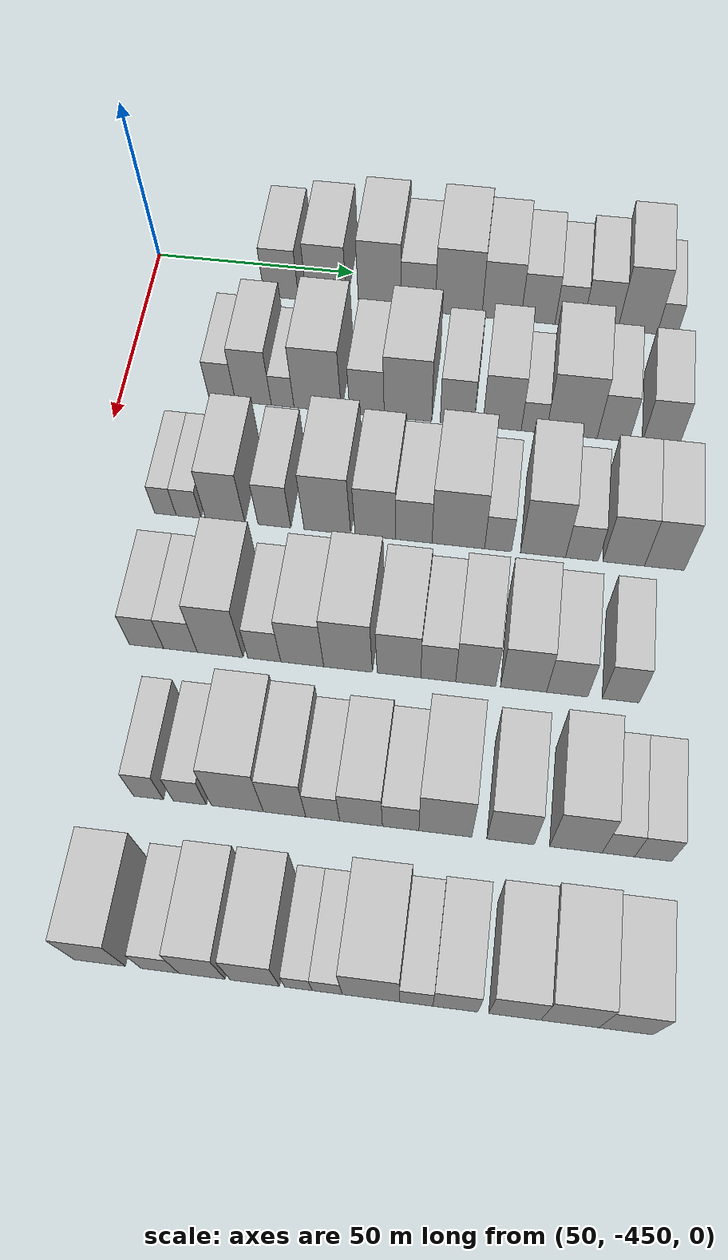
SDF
<sdf version="1.6">
 <world name="default">
  <model name="building_11">
   <static>1</static>
   <pose>50.0000 -416.7494 0 0.000000 0.000000 0.000000</pose>
   <link name="link">
    <pose>0 0 9.00 0 0 0</pose>
    <collision name="collision"><geometry><box><size>20.0000 8.7095 18.0000</size></box></geometry></collision>
    <visual name="visual">
     <cast_shadows>0</cast_shadows>
     <geometry><box><size>20.0000 8.7095 18.0000</size></box></geometry>
     <material>
      <script>
       <uri>model://HANNAS_wall/materials/scripts</uri>
       <uri>model://HANNAS_wall/materials/textures</uri>
       <name>vrc/HANNAS_wall</name>
      </script>
     </material>
    </visual>
   </link>
  </model>
  <model name="building_12">
   <static>1</static>
   <pose>50.0000 -405.3439 0 0.000000 0.000000 0.000000</pose>
   <link name="link">
    <pose>0 0 10.50 0 0 0</pose>
    <collision name="collision"><geometry><box><size>20.0000 10.1016 21.0000</size></box></geometry></collision>
    <visual name="visual">
     <cast_shadows>0</cast_shadows>
     <geometry><box><size>20.0000 10.1016 21.0000</size></box></geometry>
     <material>
      <script>
       <uri>model://HANNAS_wall/materials/scripts</uri>
       <uri>model://HANNAS_wall/materials/textures</uri>
       <name>vrc/HANNAS_wall</name>
      </script>
     </material>
    </visual>
   </link>
  </model>
  <model name="building_13">
   <static>1</static>
   <pose>50.0000 -391.9490 0 0.000000 0.000000 0.000000</pose>
   <link name="link">
    <pose>0 0 12.00 0 0 0</pose>
    <collision name="collision"><geometry><box><size>20.0000 10.6881 24.0000</size></box></geometry></collision>
    <visual name="visual">
     <cast_shadows>0</cast_shadows>
     <geometry><box><size>20.0000 10.6881 24.0000</size></box></geometry>
     <material>
      <script>
       <uri>model://HANNAS_wall/materials/scripts</uri>
       <uri>model://HANNAS_wall/materials/textures</uri>
       <name>vrc/HANNAS_wall</name>
      </script>
     </material>
    </visual>
   </link>
  </model>
  <model name="building_14">
   <static>1</static>
   <pose>50.0000 -382.3258 0 0.000000 0.000000 0.000000</pose>
   <link name="link">
    <pose>0 0 9.00 0 0 0</pose>
    <collision name="collision"><geometry><box><size>20.0000 8.5583 18.0000</size></box></geometry></collision>
    <visual name="visual">
     <cast_shadows>0</cast_shadows>
     <geometry><box><size>20.0000 8.5583 18.0000</size></box></geometry>
     <material>
      <script>
       <uri>model://HANNAS_wall/materials/scripts</uri>
       <uri>model://HANNAS_wall/materials/textures</uri>
       <name>vrc/HANNAS_wall</name>
      </script>
     </material>
    </visual>
   </link>
  </model>
  <model name="building_15">
   <static>1</static>
   <pose>50.0000 -372.2604 0 0.000000 0.000000 0.000000</pose>
   <link name="link">
    <pose>0 0 12.00 0 0 0</pose>
    <collision name="collision"><geometry><box><size>20.0000 11.5725 24.0000</size></box></geometry></collision>
    <visual name="visual">
     <cast_shadows>0</cast_shadows>
     <geometry><box><size>20.0000 11.5725 24.0000</size></box></geometry>
     <material>
      <script>
       <uri>model://HANNAS_wall/materials/scripts</uri>
       <uri>model://HANNAS_wall/materials/textures</uri>
       <name>vrc/HANNAS_wall</name>
      </script>
     </material>
    </visual>
   </link>
  </model>
  <model name="building_16">
   <static>1</static>
   <pose>50.0000 -361.6532 0 0.000000 0.000000 0.000000</pose>
   <link name="link">
    <pose>0 0 10.50 0 0 0</pose>
    <collision name="collision"><geometry><box><size>20.0000 9.6419 21.0000</size></box></geometry></collision>
    <visual name="visual">
     <cast_shadows>0</cast_shadows>
     <geometry><box><size>20.0000 9.6419 21.0000</size></box></geometry>
     <material>
      <script>
       <uri>model://HANNAS_wall/materials/scripts</uri>
       <uri>model://HANNAS_wall/materials/textures</uri>
       <name>vrc/HANNAS_wall</name>
      </script>
     </material>
    </visual>
   </link>
  </model>
  <model name="building_17">
   <static>1</static>
   <pose>50.0000 -352.5997 0 0.000000 0.000000 0.000000</pose>
   <link name="link">
    <pose>0 0 9.00 0 0 0</pose>
    <collision name="collision"><geometry><box><size>20.0000 8.4653 18.0000</size></box></geometry></collision>
    <visual name="visual">
     <cast_shadows>0</cast_shadows>
     <geometry><box><size>20.0000 8.4653 18.0000</size></box></geometry>
     <material>
      <script>
       <uri>model://HANNAS_wall/materials/scripts</uri>
       <uri>model://HANNAS_wall/materials/textures</uri>
       <name>vrc/HANNAS_wall</name>
      </script>
     </material>
    </visual>
   </link>
  </model>
  <model name="building_18">
   <static>1</static>
   <pose>50.0000 -344.9097 0 0.000000 0.000000 0.000000</pose>
   <link name="link">
    <pose>0 0 7.50 0 0 0</pose>
    <collision name="collision"><geometry><box><size>20.0000 6.9146 15.0000</size></box></geometry></collision>
    <visual name="visual">
     <cast_shadows>0</cast_shadows>
     <geometry><box><size>20.0000 6.9146 15.0000</size></box></geometry>
     <material>
      <script>
       <uri>model://HANNAS_wall/materials/scripts</uri>
       <uri>model://HANNAS_wall/materials/textures</uri>
       <name>vrc/HANNAS_wall</name>
      </script>
     </material>
    </visual>
   </link>
  </model>
  <model name="building_19">
   <static>1</static>
   <pose>50.0000 -337.1906 0 0.000000 0.000000 0.000000</pose>
   <link name="link">
    <pose>0 0 9.00 0 0 0</pose>
    <collision name="collision"><geometry><box><size>20.0000 8.5236 18.0000</size></box></geometry></collision>
    <visual name="visual">
     <cast_shadows>0</cast_shadows>
     <geometry><box><size>20.0000 8.5236 18.0000</size></box></geometry>
     <material>
      <script>
       <uri>model://HANNAS_wall/materials/scripts</uri>
       <uri>model://HANNAS_wall/materials/textures</uri>
       <name>vrc/HANNAS_wall</name>
      </script>
     </material>
    </visual>
   </link>
  </model>
  <model name="building_20">
   <static>1</static>
   <pose>50.0000 -328.0993 0 0.000000 0.000000 0.000000</pose>
   <link name="link">
    <pose>0 0 12.00 0 0 0</pose>
    <collision name="collision"><geometry><box><size>20.0000 9.6590 24.0000</size></box></geometry></collision>
    <visual name="visual">
     <cast_shadows>0</cast_shadows>
     <geometry><box><size>20.0000 9.6590 24.0000</size></box></geometry>
     <material>
      <script>
       <uri>model://HANNAS_wall/materials/scripts</uri>
       <uri>model://HANNAS_wall/materials/textures</uri>
       <name>vrc/HANNAS_wall</name>
      </script>
     </material>
    </visual>
   </link>
  </model>
  <model name="building_21">
   <static>1</static>
   <pose>50.0000 -320.8008 0 0.000000 0.000000 0.000000</pose>
   <link name="link">
    <pose>0 0 6.00 0 0 0</pose>
    <collision name="collision"><geometry><box><size>20.0000 4.9381 12.0000</size></box></geometry></collision>
    <visual name="visual">
     <cast_shadows>0</cast_shadows>
     <geometry><box><size>20.0000 4.9381 12.0000</size></box></geometry>
     <material>
      <script>
       <uri>model://HANNAS_wall/materials/scripts</uri>
       <uri>model://HANNAS_wall/materials/textures</uri>
       <name>vrc/HANNAS_wall</name>
      </script>
     </material>
    </visual>
   </link>
  </model>
  <model name="building_128">
   <static>1</static>
   <pose>82.0000 -425.5942 0 0.000000 0.000000 0.000000</pose>
   <link name="link">
    <pose>0 0 7.50 0 0 0</pose>
    <collision name="collision"><geometry><box><size>20.0000 6.4085 15.0000</size></box></geometry></collision>
    <visual name="visual">
     <cast_shadows>0</cast_shadows>
     <geometry><box><size>20.0000 6.4085 15.0000</size></box></geometry>
     <material>
      <script>
       <uri>model://HANNAS_wall/materials/scripts</uri>
       <uri>model://HANNAS_wall/materials/textures</uri>
       <name>vrc/HANNAS_wall</name>
      </script>
     </material>
    </visual>
   </link>
  </model>
  <model name="building_129">
   <static>1</static>
   <pose>82.0000 -418.0742 0 0.000000 0.000000 0.000000</pose>
   <link name="link">
    <pose>0 0 10.50 0 0 0</pose>
    <collision name="collision"><geometry><box><size>20.0000 8.6315 21.0000</size></box></geometry></collision>
    <visual name="visual">
     <cast_shadows>0</cast_shadows>
     <geometry><box><size>20.0000 8.6315 21.0000</size></box></geometry>
     <material>
      <script>
       <uri>model://HANNAS_wall/materials/scripts</uri>
       <uri>model://HANNAS_wall/materials/textures</uri>
       <name>vrc/HANNAS_wall</name>
      </script>
     </material>
    </visual>
   </link>
  </model>
  <model name="building_130">
   <static>1</static>
   <pose>82.0000 -411.0294 0 0.000000 0.000000 0.000000</pose>
   <link name="link">
    <pose>0 0 6.00 0 0 0</pose>
    <collision name="collision"><geometry><box><size>20.0000 5.4582 12.0000</size></box></geometry></collision>
    <visual name="visual">
     <cast_shadows>0</cast_shadows>
     <geometry><box><size>20.0000 5.4582 12.0000</size></box></geometry>
     <material>
      <script>
       <uri>model://HANNAS_wall/materials/scripts</uri>
       <uri>model://HANNAS_wall/materials/textures</uri>
       <name>vrc/HANNAS_wall</name>
      </script>
     </material>
    </visual>
   </link>
  </model>
  <model name="building_131">
   <static>1</static>
   <pose>82.0000 -402.6221 0 0.000000 0.000000 0.000000</pose>
   <link name="link">
    <pose>0 0 12.00 0 0 0</pose>
    <collision name="collision"><geometry><box><size>20.0000 11.3564 24.0000</size></box></geometry></collision>
    <visual name="visual">
     <cast_shadows>0</cast_shadows>
     <geometry><box><size>20.0000 11.3564 24.0000</size></box></geometry>
     <material>
      <script>
       <uri>model://HANNAS_wall/materials/scripts</uri>
       <uri>model://HANNAS_wall/materials/textures</uri>
       <name>vrc/HANNAS_wall</name>
      </script>
     </material>
    </visual>
   </link>
  </model>
  <model name="building_132">
   <static>1</static>
   <pose>82.0000 -390.8315 0 0.000000 0.000000 0.000000</pose>
   <link name="link">
    <pose>0 0 9.00 0 0 0</pose>
    <collision name="collision"><geometry><box><size>20.0000 8.2248 18.0000</size></box></geometry></collision>
    <visual name="visual">
     <cast_shadows>0</cast_shadows>
     <geometry><box><size>20.0000 8.2248 18.0000</size></box></geometry>
     <material>
      <script>
       <uri>model://HANNAS_wall/materials/scripts</uri>
       <uri>model://HANNAS_wall/materials/textures</uri>
       <name>vrc/HANNAS_wall</name>
      </script>
     </material>
    </visual>
   </link>
  </model>
  <model name="building_133">
   <static>1</static>
   <pose>82.0000 -381.0859 0 0.000000 0.000000 0.000000</pose>
   <link name="link">
    <pose>0 0 12.00 0 0 0</pose>
    <collision name="collision"><geometry><box><size>20.0000 11.2665 24.0000</size></box></geometry></collision>
    <visual name="visual">
     <cast_shadows>0</cast_shadows>
     <geometry><box><size>20.0000 11.2665 24.0000</size></box></geometry>
     <material>
      <script>
       <uri>model://HANNAS_wall/materials/scripts</uri>
       <uri>model://HANNAS_wall/materials/textures</uri>
       <name>vrc/HANNAS_wall</name>
      </script>
     </material>
    </visual>
   </link>
  </model>
  <model name="building_134">
   <static>1</static>
   <pose>82.0000 -369.4316 0 0.000000 0.000000 0.000000</pose>
   <link name="link">
    <pose>0 0 9.00 0 0 0</pose>
    <collision name="collision"><geometry><box><size>20.0000 8.0420 18.0000</size></box></geometry></collision>
    <visual name="visual">
     <cast_shadows>0</cast_shadows>
     <geometry><box><size>20.0000 8.0420 18.0000</size></box></geometry>
     <material>
      <script>
       <uri>model://HANNAS_wall/materials/scripts</uri>
       <uri>model://HANNAS_wall/materials/textures</uri>
       <name>vrc/HANNAS_wall</name>
      </script>
     </material>
    </visual>
   </link>
  </model>
  <model name="building_135">
   <static>1</static>
   <pose>82.0000 -358.8706 0 0.000000 0.000000 0.000000</pose>
   <link name="link">
    <pose>0 0 10.50 0 0 0</pose>
    <collision name="collision"><geometry><box><size>20.0000 9.0799 21.0000</size></box></geometry></collision>
    <visual name="visual">
     <cast_shadows>0</cast_shadows>
     <geometry><box><size>20.0000 9.0799 21.0000</size></box></geometry>
     <material>
      <script>
       <uri>model://HANNAS_wall/materials/scripts</uri>
       <uri>model://HANNAS_wall/materials/textures</uri>
       <name>vrc/HANNAS_wall</name>
      </script>
     </material>
    </visual>
   </link>
  </model>
  <model name="building_136">
   <static>1</static>
   <pose>82.0000 -351.3956 0 0.000000 0.000000 0.000000</pose>
   <link name="link">
    <pose>0 0 6.00 0 0 0</pose>
    <collision name="collision"><geometry><box><size>20.0000 5.8702 12.0000</size></box></geometry></collision>
    <visual name="visual">
     <cast_shadows>0</cast_shadows>
     <geometry><box><size>20.0000 5.8702 12.0000</size></box></geometry>
     <material>
      <script>
       <uri>model://HANNAS_wall/materials/scripts</uri>
       <uri>model://HANNAS_wall/materials/textures</uri>
       <name>vrc/HANNAS_wall</name>
      </script>
     </material>
    </visual>
   </link>
  </model>
  <model name="building_137">
   <static>1</static>
   <pose>82.0000 -342.4925 0 0.000000 0.000000 0.000000</pose>
   <link name="link">
    <pose>0 0 12.00 0 0 0</pose>
    <collision name="collision"><geometry><box><size>20.0000 11.9359 24.0000</size></box></geometry></collision>
    <visual name="visual">
     <cast_shadows>0</cast_shadows>
     <geometry><box><size>20.0000 11.9359 24.0000</size></box></geometry>
     <material>
      <script>
       <uri>model://HANNAS_wall/materials/scripts</uri>
       <uri>model://HANNAS_wall/materials/textures</uri>
       <name>vrc/HANNAS_wall</name>
      </script>
     </material>
    </visual>
   </link>
  </model>
  <model name="building_138">
   <static>1</static>
   <pose>82.0000 -332.7742 0 0.000000 0.000000 0.000000</pose>
   <link name="link">
    <pose>0 0 9.00 0 0 0</pose>
    <collision name="collision"><geometry><box><size>20.0000 7.5007 18.0000</size></box></geometry></collision>
    <visual name="visual">
     <cast_shadows>0</cast_shadows>
     <geometry><box><size>20.0000 7.5007 18.0000</size></box></geometry>
     <material>
      <script>
       <uri>model://HANNAS_wall/materials/scripts</uri>
       <uri>model://HANNAS_wall/materials/textures</uri>
       <name>vrc/HANNAS_wall</name>
      </script>
     </material>
    </visual>
   </link>
  </model>
  <model name="building_139">
   <static>1</static>
   <pose>82.0000 -321.7653 0 0.000000 0.000000 0.000000</pose>
   <link name="link">
    <pose>0 0 9.00 0 0 0</pose>
    <collision name="collision"><geometry><box><size>20.0000 8.5171 18.0000</size></box></geometry></collision>
    <visual name="visual">
     <cast_shadows>0</cast_shadows>
     <geometry><box><size>20.0000 8.5171 18.0000</size></box></geometry>
     <material>
      <script>
       <uri>model://HANNAS_wall/materials/scripts</uri>
       <uri>model://HANNAS_wall/materials/textures</uri>
       <name>vrc/HANNAS_wall</name>
      </script>
     </material>
    </visual>
   </link>
  </model>
  <model name="building_249">
   <static>1</static>
   <pose>114.0000 -432.4634 0 0.000000 0.000000 0.000000</pose>
   <link name="link">
    <pose>0 0 6.00 0 0 0</pose>
    <collision name="collision"><geometry><box><size>20.0000 4.9484 12.0000</size></box></geometry></collision>
    <visual name="visual">
     <cast_shadows>0</cast_shadows>
     <geometry><box><size>20.0000 4.9484 12.0000</size></box></geometry>
     <material>
      <script>
       <uri>model://HANNAS_wall/materials/scripts</uri>
       <uri>model://HANNAS_wall/materials/textures</uri>
       <name>vrc/HANNAS_wall</name>
      </script>
     </material>
    </visual>
   </link>
  </model>
  <model name="building_250">
   <static>1</static>
   <pose>114.0000 -427.1244 0 0.000000 0.000000 0.000000</pose>
   <link name="link">
    <pose>0 0 6.00 0 0 0</pose>
    <collision name="collision"><geometry><box><size>20.0000 5.7296 12.0000</size></box></geometry></collision>
    <visual name="visual">
     <cast_shadows>0</cast_shadows>
     <geometry><box><size>20.0000 5.7296 12.0000</size></box></geometry>
     <material>
      <script>
       <uri>model://HANNAS_wall/materials/scripts</uri>
       <uri>model://HANNAS_wall/materials/textures</uri>
       <name>vrc/HANNAS_wall</name>
      </script>
     </material>
    </visual>
   </link>
  </model>
  <model name="building_251">
   <static>1</static>
   <pose>114.0000 -418.7480 0 0.000000 0.000000 0.000000</pose>
   <link name="link">
    <pose>0 0 10.50 0 0 0</pose>
    <collision name="collision"><geometry><box><size>20.0000 9.0232 21.0000</size></box></geometry></collision>
    <visual name="visual">
     <cast_shadows>0</cast_shadows>
     <geometry><box><size>20.0000 9.0232 21.0000</size></box></geometry>
     <material>
      <script>
       <uri>model://HANNAS_wall/materials/scripts</uri>
       <uri>model://HANNAS_wall/materials/textures</uri>
       <name>vrc/HANNAS_wall</name>
      </script>
     </material>
    </visual>
   </link>
  </model>
  <model name="building_252">
   <static>1</static>
   <pose>114.0000 -407.4915 0 0.000000 0.000000 0.000000</pose>
   <link name="link">
    <pose>0 0 9.00 0 0 0</pose>
    <collision name="collision"><geometry><box><size>20.0000 7.4896 18.0000</size></box></geometry></collision>
    <visual name="visual">
     <cast_shadows>0</cast_shadows>
     <geometry><box><size>20.0000 7.4896 18.0000</size></box></geometry>
     <material>
      <script>
       <uri>model://HANNAS_wall/materials/scripts</uri>
       <uri>model://HANNAS_wall/materials/textures</uri>
       <name>vrc/HANNAS_wall</name>
      </script>
     </material>
    </visual>
   </link>
  </model>
  <model name="building_253">
   <static>1</static>
   <pose>114.0000 -395.4619 0 0.000000 0.000000 0.000000</pose>
   <link name="link">
    <pose>0 0 12.00 0 0 0</pose>
    <collision name="collision"><geometry><box><size>20.0000 10.5697 24.0000</size></box></geometry></collision>
    <visual name="visual">
     <cast_shadows>0</cast_shadows>
     <geometry><box><size>20.0000 10.5697 24.0000</size></box></geometry>
     <material>
      <script>
       <uri>model://HANNAS_wall/materials/scripts</uri>
       <uri>model://HANNAS_wall/materials/textures</uri>
       <name>vrc/HANNAS_wall</name>
      </script>
     </material>
    </visual>
   </link>
  </model>
  <model name="building_254">
   <static>1</static>
   <pose>114.0000 -384.6008 0 0.000000 0.000000 0.000000</pose>
   <link name="link">
    <pose>0 0 10.50 0 0 0</pose>
    <collision name="collision"><geometry><box><size>20.0000 9.1524 21.0000</size></box></geometry></collision>
    <visual name="visual">
     <cast_shadows>0</cast_shadows>
     <geometry><box><size>20.0000 9.1524 21.0000</size></box></geometry>
     <material>
      <script>
       <uri>model://HANNAS_wall/materials/scripts</uri>
       <uri>model://HANNAS_wall/materials/textures</uri>
       <name>vrc/HANNAS_wall</name>
      </script>
     </material>
    </visual>
   </link>
  </model>
  <model name="building_255">
   <static>1</static>
   <pose>114.0000 -375.9297 0 0.000000 0.000000 0.000000</pose>
   <link name="link">
    <pose>0 0 9.00 0 0 0</pose>
    <collision name="collision"><geometry><box><size>20.0000 8.1899 18.0000</size></box></geometry></collision>
    <visual name="visual">
     <cast_shadows>0</cast_shadows>
     <geometry><box><size>20.0000 8.1899 18.0000</size></box></geometry>
     <material>
      <script>
       <uri>model://HANNAS_wall/materials/scripts</uri>
       <uri>model://HANNAS_wall/materials/textures</uri>
       <name>vrc/HANNAS_wall</name>
      </script>
     </material>
    </visual>
   </link>
  </model>
  <model name="building_256">
   <static>1</static>
   <pose>114.0000 -365.9639 0 0.000000 0.000000 0.000000</pose>
   <link name="link">
    <pose>0 0 12.00 0 0 0</pose>
    <collision name="collision"><geometry><box><size>20.0000 11.7417 24.0000</size></box></geometry></collision>
    <visual name="visual">
     <cast_shadows>0</cast_shadows>
     <geometry><box><size>20.0000 11.7417 24.0000</size></box></geometry>
     <material>
      <script>
       <uri>model://HANNAS_wall/materials/scripts</uri>
       <uri>model://HANNAS_wall/materials/textures</uri>
       <name>vrc/HANNAS_wall</name>
      </script>
     </material>
    </visual>
   </link>
  </model>
  <model name="building_257">
   <static>1</static>
   <pose>114.0000 -357.0807 0 0.000000 0.000000 0.000000</pose>
   <link name="link">
    <pose>0 0 7.50 0 0 0</pose>
    <collision name="collision"><geometry><box><size>20.0000 6.0247 15.0000</size></box></geometry></collision>
    <visual name="visual">
     <cast_shadows>0</cast_shadows>
     <geometry><box><size>20.0000 6.0247 15.0000</size></box></geometry>
     <material>
      <script>
       <uri>model://HANNAS_wall/materials/scripts</uri>
       <uri>model://HANNAS_wall/materials/textures</uri>
       <name>vrc/HANNAS_wall</name>
      </script>
     </material>
    </visual>
   </link>
  </model>
  <model name="building_258">
   <static>1</static>
   <pose>114.0000 -347.0550 0 0.000000 0.000000 0.000000</pose>
   <link name="link">
    <pose>0 0 12.00 0 0 0</pose>
    <collision name="collision"><geometry><box><size>20.0000 10.0267 24.0000</size></box></geometry></collision>
    <visual name="visual">
     <cast_shadows>0</cast_shadows>
     <geometry><box><size>20.0000 10.0267 24.0000</size></box></geometry>
     <material>
      <script>
       <uri>model://HANNAS_wall/materials/scripts</uri>
       <uri>model://HANNAS_wall/materials/textures</uri>
       <name>vrc/HANNAS_wall</name>
      </script>
     </material>
    </visual>
   </link>
  </model>
  <model name="building_259">
   <static>1</static>
   <pose>114.0000 -338.4202 0 0.000000 0.000000 0.000000</pose>
   <link name="link">
    <pose>0 0 7.50 0 0 0</pose>
    <collision name="collision"><geometry><box><size>20.0000 7.2428 15.0000</size></box></geometry></collision>
    <visual name="visual">
     <cast_shadows>0</cast_shadows>
     <geometry><box><size>20.0000 7.2428 15.0000</size></box></geometry>
     <material>
      <script>
       <uri>model://HANNAS_wall/materials/scripts</uri>
       <uri>model://HANNAS_wall/materials/textures</uri>
       <name>vrc/HANNAS_wall</name>
      </script>
     </material>
    </visual>
   </link>
  </model>
  <model name="building_260">
   <static>1</static>
   <pose>114.0000 -329.1936 0 0.000000 0.000000 0.000000</pose>
   <link name="link">
    <pose>0 0 10.50 0 0 0</pose>
    <collision name="collision"><geometry><box><size>20.0000 9.2105 21.0000</size></box></geometry></collision>
    <visual name="visual">
     <cast_shadows>0</cast_shadows>
     <geometry><box><size>20.0000 9.2105 21.0000</size></box></geometry>
     <material>
      <script>
       <uri>model://HANNAS_wall/materials/scripts</uri>
       <uri>model://HANNAS_wall/materials/textures</uri>
       <name>vrc/HANNAS_wall</name>
      </script>
     </material>
    </visual>
   </link>
  </model>
  <model name="building_261">
   <static>1</static>
   <pose>114.0000 -320.2132 0 0.000000 0.000000 0.000000</pose>
   <link name="link">
    <pose>0 0 10.50 0 0 0</pose>
    <collision name="collision"><geometry><box><size>20.0000 8.7502 21.0000</size></box></geometry></collision>
    <visual name="visual">
     <cast_shadows>0</cast_shadows>
     <geometry><box><size>20.0000 8.7502 21.0000</size></box></geometry>
     <material>
      <script>
       <uri>model://HANNAS_wall/materials/scripts</uri>
       <uri>model://HANNAS_wall/materials/textures</uri>
       <name>vrc/HANNAS_wall</name>
      </script>
     </material>
    </visual>
   </link>
  </model>
  <model name="building_365">
   <static>1</static>
   <pose>146.0000 -429.6384 0 0.000000 0.000000 0.000000</pose>
   <link name="link">
    <pose>0 0 7.50 0 0 0</pose>
    <collision name="collision"><geometry><box><size>20.0000 7.4139 15.0000</size></box></geometry></collision>
    <visual name="visual">
     <cast_shadows>0</cast_shadows>
     <geometry><box><size>20.0000 7.4139 15.0000</size></box></geometry>
     <material>
      <script>
       <uri>model://HANNAS_wall/materials/scripts</uri>
       <uri>model://HANNAS_wall/materials/textures</uri>
       <name>vrc/HANNAS_wall</name>
      </script>
     </material>
    </visual>
   </link>
  </model>
  <model name="building_366">
   <static>1</static>
   <pose>146.0000 -422.2710 0 0.000000 0.000000 0.000000</pose>
   <link name="link">
    <pose>0 0 7.50 0 0 0</pose>
    <collision name="collision"><geometry><box><size>20.0000 7.3209 15.0000</size></box></geometry></collision>
    <visual name="visual">
     <cast_shadows>0</cast_shadows>
     <geometry><box><size>20.0000 7.3209 15.0000</size></box></geometry>
     <material>
      <script>
       <uri>model://HANNAS_wall/materials/scripts</uri>
       <uri>model://HANNAS_wall/materials/textures</uri>
       <name>vrc/HANNAS_wall</name>
      </script>
     </material>
    </visual>
   </link>
  </model>
  <model name="building_367">
   <static>1</static>
   <pose>146.0000 -413.6623 0 0.000000 0.000000 0.000000</pose>
   <link name="link">
    <pose>0 0 12.00 0 0 0</pose>
    <collision name="collision"><geometry><box><size>20.0000 9.8966 24.0000</size></box></geometry></collision>
    <visual name="visual">
     <cast_shadows>0</cast_shadows>
     <geometry><box><size>20.0000 9.8966 24.0000</size></box></geometry>
     <material>
      <script>
       <uri>model://HANNAS_wall/materials/scripts</uri>
       <uri>model://HANNAS_wall/materials/textures</uri>
       <name>vrc/HANNAS_wall</name>
      </script>
     </material>
    </visual>
   </link>
  </model>
  <model name="building_368">
   <static>1</static>
   <pose>146.0000 -404.1558 0 0.000000 0.000000 0.000000</pose>
   <link name="link">
    <pose>0 0 7.50 0 0 0</pose>
    <collision name="collision"><geometry><box><size>20.0000 7.1165 15.0000</size></box></geometry></collision>
    <visual name="visual">
     <cast_shadows>0</cast_shadows>
     <geometry><box><size>20.0000 7.1165 15.0000</size></box></geometry>
     <material>
      <script>
       <uri>model://HANNAS_wall/materials/scripts</uri>
       <uri>model://HANNAS_wall/materials/textures</uri>
       <name>vrc/HANNAS_wall</name>
      </script>
     </material>
    </visual>
   </link>
  </model>
  <model name="building_369">
   <static>1</static>
   <pose>146.0000 -395.9934 0 0.000000 0.000000 0.000000</pose>
   <link name="link">
    <pose>0 0 10.50 0 0 0</pose>
    <collision name="collision"><geometry><box><size>20.0000 9.2083 21.0000</size></box></geometry></collision>
    <visual name="visual">
     <cast_shadows>0</cast_shadows>
     <geometry><box><size>20.0000 9.2083 21.0000</size></box></geometry>
     <material>
      <script>
       <uri>model://HANNAS_wall/materials/scripts</uri>
       <uri>model://HANNAS_wall/materials/textures</uri>
       <name>vrc/HANNAS_wall</name>
      </script>
     </material>
    </visual>
   </link>
  </model>
  <model name="building_370">
   <static>1</static>
   <pose>146.0000 -386.1870 0 0.000000 0.000000 0.000000</pose>
   <link name="link">
    <pose>0 0 12.00 0 0 0</pose>
    <collision name="collision"><geometry><box><size>20.0000 10.4045 24.0000</size></box></geometry></collision>
    <visual name="visual">
     <cast_shadows>0</cast_shadows>
     <geometry><box><size>20.0000 10.4045 24.0000</size></box></geometry>
     <material>
      <script>
       <uri>model://HANNAS_wall/materials/scripts</uri>
       <uri>model://HANNAS_wall/materials/textures</uri>
       <name>vrc/HANNAS_wall</name>
      </script>
     </material>
    </visual>
   </link>
  </model>
  <model name="building_371">
   <static>1</static>
   <pose>146.0000 -375.3439 0 0.000000 0.000000 0.000000</pose>
   <link name="link">
    <pose>0 0 10.50 0 0 0</pose>
    <collision name="collision"><geometry><box><size>20.0000 9.2816 21.0000</size></box></geometry></collision>
    <visual name="visual">
     <cast_shadows>0</cast_shadows>
     <geometry><box><size>20.0000 9.2816 21.0000</size></box></geometry>
     <material>
      <script>
       <uri>model://HANNAS_wall/materials/scripts</uri>
       <uri>model://HANNAS_wall/materials/textures</uri>
       <name>vrc/HANNAS_wall</name>
      </script>
     </material>
    </visual>
   </link>
  </model>
  <model name="building_372">
   <static>1</static>
   <pose>146.0000 -367.0143 0 0.000000 0.000000 0.000000</pose>
   <link name="link">
    <pose>0 0 9.00 0 0 0</pose>
    <collision name="collision"><geometry><box><size>20.0000 7.3777 18.0000</size></box></geometry></collision>
    <visual name="visual">
     <cast_shadows>0</cast_shadows>
     <geometry><box><size>20.0000 7.3777 18.0000</size></box></geometry>
     <material>
      <script>
       <uri>model://HANNAS_wall/materials/scripts</uri>
       <uri>model://HANNAS_wall/materials/textures</uri>
       <name>vrc/HANNAS_wall</name>
      </script>
     </material>
    </visual>
   </link>
  </model>
  <model name="building_373">
   <static>1</static>
   <pose>146.0000 -359.0934 0 0.000000 0.000000 0.000000</pose>
   <link name="link">
    <pose>0 0 10.50 0 0 0</pose>
    <collision name="collision"><geometry><box><size>20.0000 8.4639 21.0000</size></box></geometry></collision>
    <visual name="visual">
     <cast_shadows>0</cast_shadows>
     <geometry><box><size>20.0000 8.4639 21.0000</size></box></geometry>
     <material>
      <script>
       <uri>model://HANNAS_wall/materials/scripts</uri>
       <uri>model://HANNAS_wall/materials/textures</uri>
       <name>vrc/HANNAS_wall</name>
      </script>
     </material>
    </visual>
   </link>
  </model>
  <model name="building_374">
   <static>1</static>
   <pose>146.0000 -349.0134 0 0.000000 0.000000 0.000000</pose>
   <link name="link">
    <pose>0 0 10.50 0 0 0</pose>
    <collision name="collision"><geometry><box><size>20.0000 9.6962 21.0000</size></box></geometry></collision>
    <visual name="visual">
     <cast_shadows>0</cast_shadows>
     <geometry><box><size>20.0000 9.6962 21.0000</size></box></geometry>
     <material>
      <script>
       <uri>model://HANNAS_wall/materials/scripts</uri>
       <uri>model://HANNAS_wall/materials/textures</uri>
       <name>vrc/HANNAS_wall</name>
      </script>
     </material>
    </visual>
   </link>
  </model>
  <model name="building_375">
   <static>1</static>
   <pose>146.0000 -339.8485 0 0.000000 0.000000 0.000000</pose>
   <link name="link">
    <pose>0 0 9.00 0 0 0</pose>
    <collision name="collision"><geometry><box><size>20.0000 8.6336 18.0000</size></box></geometry></collision>
    <visual name="visual">
     <cast_shadows>0</cast_shadows>
     <geometry><box><size>20.0000 8.6336 18.0000</size></box></geometry>
     <material>
      <script>
       <uri>model://HANNAS_wall/materials/scripts</uri>
       <uri>model://HANNAS_wall/materials/textures</uri>
       <name>vrc/HANNAS_wall</name>
      </script>
     </material>
    </visual>
   </link>
  </model>
  <model name="building_376">
   <static>1</static>
   <pose>146.0000 -328.6919 0 0.000000 0.000000 0.000000</pose>
   <link name="link">
    <pose>0 0 9.00 0 0 0</pose>
    <collision name="collision"><geometry><box><size>20.0000 7.6796 18.0000</size></box></geometry></collision>
    <visual name="visual">
     <cast_shadows>0</cast_shadows>
     <geometry><box><size>20.0000 7.6796 18.0000</size></box></geometry>
     <material>
      <script>
       <uri>model://HANNAS_wall/materials/scripts</uri>
       <uri>model://HANNAS_wall/materials/textures</uri>
       <name>vrc/HANNAS_wall</name>
      </script>
     </material>
    </visual>
   </link>
  </model>
  <model name="building_479">
   <static>1</static>
   <pose>178.0000 -422.0670 0 0.000000 0.000000 0.000000</pose>
   <link name="link">
    <pose>0 0 7.50 0 0 0</pose>
    <collision name="collision"><geometry><box><size>20.0000 6.0930 15.0000</size></box></geometry></collision>
    <visual name="visual">
     <cast_shadows>0</cast_shadows>
     <geometry><box><size>20.0000 6.0930 15.0000</size></box></geometry>
     <material>
      <script>
       <uri>model://HANNAS_wall/materials/scripts</uri>
       <uri>model://HANNAS_wall/materials/textures</uri>
       <name>vrc/HANNAS_wall</name>
      </script>
     </material>
    </visual>
   </link>
  </model>
  <model name="building_480">
   <static>1</static>
   <pose>178.0000 -413.6349 0 0.000000 0.000000 0.000000</pose>
   <link name="link">
    <pose>0 0 7.50 0 0 0</pose>
    <collision name="collision"><geometry><box><size>20.0000 6.7712 15.0000</size></box></geometry></collision>
    <visual name="visual">
     <cast_shadows>0</cast_shadows>
     <geometry><box><size>20.0000 6.7712 15.0000</size></box></geometry>
     <material>
      <script>
       <uri>model://HANNAS_wall/materials/scripts</uri>
       <uri>model://HANNAS_wall/materials/textures</uri>
       <name>vrc/HANNAS_wall</name>
      </script>
     </material>
    </visual>
   </link>
  </model>
  <model name="building_481">
   <static>1</static>
   <pose>178.0000 -403.9595 0 0.000000 0.000000 0.000000</pose>
   <link name="link">
    <pose>0 0 12.00 0 0 0</pose>
    <collision name="collision"><geometry><box><size>20.0000 10.5796 24.0000</size></box></geometry></collision>
    <visual name="visual">
     <cast_shadows>0</cast_shadows>
     <geometry><box><size>20.0000 10.5796 24.0000</size></box></geometry>
     <material>
      <script>
       <uri>model://HANNAS_wall/materials/scripts</uri>
       <uri>model://HANNAS_wall/materials/textures</uri>
       <name>vrc/HANNAS_wall</name>
      </script>
     </material>
    </visual>
   </link>
  </model>
  <model name="building_482">
   <static>1</static>
   <pose>178.0000 -394.3865 0 0.000000 0.000000 0.000000</pose>
   <link name="link">
    <pose>0 0 10.50 0 0 0</pose>
    <collision name="collision"><geometry><box><size>20.0000 8.5664 21.0000</size></box></geometry></collision>
    <visual name="visual">
     <cast_shadows>0</cast_shadows>
     <geometry><box><size>20.0000 8.5664 21.0000</size></box></geometry>
     <material>
      <script>
       <uri>model://HANNAS_wall/materials/scripts</uri>
       <uri>model://HANNAS_wall/materials/textures</uri>
       <name>vrc/HANNAS_wall</name>
      </script>
     </material>
    </visual>
   </link>
  </model>
  <model name="building_483">
   <static>1</static>
   <pose>178.0000 -386.6785 0 0.000000 0.000000 0.000000</pose>
   <link name="link">
    <pose>0 0 7.50 0 0 0</pose>
    <collision name="collision"><geometry><box><size>20.0000 6.8497 15.0000</size></box></geometry></collision>
    <visual name="visual">
     <cast_shadows>0</cast_shadows>
     <geometry><box><size>20.0000 6.8497 15.0000</size></box></geometry>
     <material>
      <script>
       <uri>model://HANNAS_wall/materials/scripts</uri>
       <uri>model://HANNAS_wall/materials/textures</uri>
       <name>vrc/HANNAS_wall</name>
      </script>
     </material>
    </visual>
   </link>
  </model>
  <model name="building_484">
   <static>1</static>
   <pose>178.0000 -378.9752 0 0.000000 0.000000 0.000000</pose>
   <link name="link">
    <pose>0 0 9.00 0 0 0</pose>
    <collision name="collision"><geometry><box><size>20.0000 8.5570 18.0000</size></box></geometry></collision>
    <visual name="visual">
     <cast_shadows>0</cast_shadows>
     <geometry><box><size>20.0000 8.5570 18.0000</size></box></geometry>
     <material>
      <script>
       <uri>model://HANNAS_wall/materials/scripts</uri>
       <uri>model://HANNAS_wall/materials/textures</uri>
       <name>vrc/HANNAS_wall</name>
      </script>
     </material>
    </visual>
   </link>
  </model>
  <model name="building_485">
   <static>1</static>
   <pose>178.0000 -371.0540 0 0.000000 0.000000 0.000000</pose>
   <link name="link">
    <pose>0 0 7.50 0 0 0</pose>
    <collision name="collision"><geometry><box><size>20.0000 7.2854 15.0000</size></box></geometry></collision>
    <visual name="visual">
     <cast_shadows>0</cast_shadows>
     <geometry><box><size>20.0000 7.2854 15.0000</size></box></geometry>
     <material>
      <script>
       <uri>model://HANNAS_wall/materials/scripts</uri>
       <uri>model://HANNAS_wall/materials/textures</uri>
       <name>vrc/HANNAS_wall</name>
      </script>
     </material>
    </visual>
   </link>
  </model>
  <model name="building_486">
   <static>1</static>
   <pose>178.0000 -362.1559 0 0.000000 0.000000 0.000000</pose>
   <link name="link">
    <pose>0 0 12.00 0 0 0</pose>
    <collision name="collision"><geometry><box><size>20.0000 10.5108 24.0000</size></box></geometry></collision>
    <visual name="visual">
     <cast_shadows>0</cast_shadows>
     <geometry><box><size>20.0000 10.5108 24.0000</size></box></geometry>
     <material>
      <script>
       <uri>model://HANNAS_wall/materials/scripts</uri>
       <uri>model://HANNAS_wall/materials/textures</uri>
       <name>vrc/HANNAS_wall</name>
      </script>
     </material>
    </visual>
   </link>
  </model>
  <model name="building_487">
   <static>1</static>
   <pose>178.0000 -349.1929 0 0.000000 0.000000 0.000000</pose>
   <link name="link">
    <pose>0 0 10.50 0 0 0</pose>
    <collision name="collision"><geometry><box><size>20.0000 9.4153 21.0000</size></box></geometry></collision>
    <visual name="visual">
     <cast_shadows>0</cast_shadows>
     <geometry><box><size>20.0000 9.4153 21.0000</size></box></geometry>
     <material>
      <script>
       <uri>model://HANNAS_wall/materials/scripts</uri>
       <uri>model://HANNAS_wall/materials/textures</uri>
       <name>vrc/HANNAS_wall</name>
      </script>
     </material>
    </visual>
   </link>
  </model>
  <model name="building_488">
   <static>1</static>
   <pose>178.0000 -336.3119 0 0.000000 0.000000 0.000000</pose>
   <link name="link">
    <pose>0 0 12.00 0 0 0</pose>
    <collision name="collision"><geometry><box><size>20.0000 10.3468 24.0000</size></box></geometry></collision>
    <visual name="visual">
     <cast_shadows>0</cast_shadows>
     <geometry><box><size>20.0000 10.3468 24.0000</size></box></geometry>
     <material>
      <script>
       <uri>model://HANNAS_wall/materials/scripts</uri>
       <uri>model://HANNAS_wall/materials/textures</uri>
       <name>vrc/HANNAS_wall</name>
      </script>
     </material>
    </visual>
   </link>
  </model>
  <model name="building_489">
   <static>1</static>
   <pose>178.0000 -327.9578 0 0.000000 0.000000 0.000000</pose>
   <link name="link">
    <pose>0 0 7.50 0 0 0</pose>
    <collision name="collision"><geometry><box><size>20.0000 6.3614 15.0000</size></box></geometry></collision>
    <visual name="visual">
     <cast_shadows>0</cast_shadows>
     <geometry><box><size>20.0000 6.3614 15.0000</size></box></geometry>
     <material>
      <script>
       <uri>model://HANNAS_wall/materials/scripts</uri>
       <uri>model://HANNAS_wall/materials/textures</uri>
       <name>vrc/HANNAS_wall</name>
      </script>
     </material>
    </visual>
   </link>
  </model>
  <model name="building_490">
   <static>1</static>
   <pose>178.0000 -321.1456 0 0.000000 0.000000 0.000000</pose>
   <link name="link">
    <pose>0 0 7.50 0 0 0</pose>
    <collision name="collision"><geometry><box><size>20.0000 7.2631 15.0000</size></box></geometry></collision>
    <visual name="visual">
     <cast_shadows>0</cast_shadows>
     <geometry><box><size>20.0000 7.2631 15.0000</size></box></geometry>
     <material>
      <script>
       <uri>model://HANNAS_wall/materials/scripts</uri>
       <uri>model://HANNAS_wall/materials/textures</uri>
       <name>vrc/HANNAS_wall</name>
      </script>
     </material>
    </visual>
   </link>
  </model>
  <model name="building_606">
   <static>1</static>
   <pose>210.0000 -424.3122 0 0.000000 0.000000 0.000000</pose>
   <link name="link">
    <pose>0 0 10.50 0 0 0</pose>
    <collision name="collision"><geometry><box><size>20.0000 9.8710 21.0000</size></box></geometry></collision>
    <visual name="visual">
     <cast_shadows>0</cast_shadows>
     <geometry><box><size>20.0000 9.8710 21.0000</size></box></geometry>
     <material>
      <script>
       <uri>model://HANNAS_wall/materials/scripts</uri>
       <uri>model://HANNAS_wall/materials/textures</uri>
       <name>vrc/HANNAS_wall</name>
      </script>
     </material>
    </visual>
   </link>
  </model>
  <model name="building_607">
   <static>1</static>
   <pose>210.0000 -412.7473 0 0.000000 0.000000 0.000000</pose>
   <link name="link">
    <pose>0 0 7.50 0 0 0</pose>
    <collision name="collision"><geometry><box><size>20.0000 7.2587 15.0000</size></box></geometry></collision>
    <visual name="visual">
     <cast_shadows>0</cast_shadows>
     <geometry><box><size>20.0000 7.2587 15.0000</size></box></geometry>
     <material>
      <script>
       <uri>model://HANNAS_wall/materials/scripts</uri>
       <uri>model://HANNAS_wall/materials/textures</uri>
       <name>vrc/HANNAS_wall</name>
      </script>
     </material>
    </visual>
   </link>
  </model>
  <model name="building_608">
   <static>1</static>
   <pose>210.0000 -404.6867 0 0.000000 0.000000 0.000000</pose>
   <link name="link">
    <pose>0 0 10.50 0 0 0</pose>
    <collision name="collision"><geometry><box><size>20.0000 8.8625 21.0000</size></box></geometry></collision>
    <visual name="visual">
     <cast_shadows>0</cast_shadows>
     <geometry><box><size>20.0000 8.8625 21.0000</size></box></geometry>
     <material>
      <script>
       <uri>model://HANNAS_wall/materials/scripts</uri>
       <uri>model://HANNAS_wall/materials/textures</uri>
       <name>vrc/HANNAS_wall</name>
      </script>
     </material>
    </visual>
   </link>
  </model>
  <model name="building_609">
   <static>1</static>
   <pose>210.0000 -394.5934 0 0.000000 0.000000 0.000000</pose>
   <link name="link">
    <pose>0 0 10.50 0 0 0</pose>
    <collision name="collision"><geometry><box><size>20.0000 9.3242 21.0000</size></box></geometry></collision>
    <visual name="visual">
     <cast_shadows>0</cast_shadows>
     <geometry><box><size>20.0000 9.3242 21.0000</size></box></geometry>
     <material>
      <script>
       <uri>model://HANNAS_wall/materials/scripts</uri>
       <uri>model://HANNAS_wall/materials/textures</uri>
       <name>vrc/HANNAS_wall</name>
      </script>
     </material>
    </visual>
   </link>
  </model>
  <model name="building_610">
   <static>1</static>
   <pose>210.0000 -386.3159 0 0.000000 0.000000 0.000000</pose>
   <link name="link">
    <pose>0 0 6.00 0 0 0</pose>
    <collision name="collision"><geometry><box><size>20.0000 5.2307 12.0000</size></box></geometry></collision>
    <visual name="visual">
     <cast_shadows>0</cast_shadows>
     <geometry><box><size>20.0000 5.2307 12.0000</size></box></geometry>
     <material>
      <script>
       <uri>model://HANNAS_wall/materials/scripts</uri>
       <uri>model://HANNAS_wall/materials/textures</uri>
       <name>vrc/HANNAS_wall</name>
      </script>
     </material>
    </visual>
   </link>
  </model>
  <model name="building_611">
   <static>1</static>
   <pose>210.0000 -380.8943 0 0.000000 0.000000 0.000000</pose>
   <link name="link">
    <pose>0 0 6.00 0 0 0</pose>
    <collision name="collision"><geometry><box><size>20.0000 5.6126 12.0000</size></box></geometry></collision>
    <visual name="visual">
     <cast_shadows>0</cast_shadows>
     <geometry><box><size>20.0000 5.6126 12.0000</size></box></geometry>
     <material>
      <script>
       <uri>model://HANNAS_wall/materials/scripts</uri>
       <uri>model://HANNAS_wall/materials/textures</uri>
       <name>vrc/HANNAS_wall</name>
      </script>
     </material>
    </visual>
   </link>
  </model>
  <model name="building_612">
   <static>1</static>
   <pose>210.0000 -372.7023 0 0.000000 0.000000 0.000000</pose>
   <link name="link">
    <pose>0 0 12.00 0 0 0</pose>
    <collision name="collision"><geometry><box><size>20.0000 10.7715 24.0000</size></box></geometry></collision>
    <visual name="visual">
     <cast_shadows>0</cast_shadows>
     <geometry><box><size>20.0000 10.7715 24.0000</size></box></geometry>
     <material>
      <script>
       <uri>model://HANNAS_wall/materials/scripts</uri>
       <uri>model://HANNAS_wall/materials/textures</uri>
       <name>vrc/HANNAS_wall</name>
      </script>
     </material>
    </visual>
   </link>
  </model>
  <model name="building_613">
   <static>1</static>
   <pose>210.0000 -364.2200 0 0.000000 0.000000 0.000000</pose>
   <link name="link">
    <pose>0 0 7.50 0 0 0</pose>
    <collision name="collision"><geometry><box><size>20.0000 6.1929 15.0000</size></box></geometry></collision>
    <visual name="visual">
     <cast_shadows>0</cast_shadows>
     <geometry><box><size>20.0000 6.1929 15.0000</size></box></geometry>
     <material>
      <script>
       <uri>model://HANNAS_wall/materials/scripts</uri>
       <uri>model://HANNAS_wall/materials/textures</uri>
       <name>vrc/HANNAS_wall</name>
      </script>
     </material>
    </visual>
   </link>
  </model>
  <model name="building_614">
   <static>1</static>
   <pose>210.0000 -356.9212 0 0.000000 0.000000 0.000000</pose>
   <link name="link">
    <pose>0 0 9.00 0 0 0</pose>
    <collision name="collision"><geometry><box><size>20.0000 8.4048 18.0000</size></box></geometry></collision>
    <visual name="visual">
     <cast_shadows>0</cast_shadows>
     <geometry><box><size>20.0000 8.4048 18.0000</size></box></geometry>
     <material>
      <script>
       <uri>model://HANNAS_wall/materials/scripts</uri>
       <uri>model://HANNAS_wall/materials/textures</uri>
       <name>vrc/HANNAS_wall</name>
      </script>
     </material>
    </visual>
   </link>
  </model>
  <model name="building_615">
   <static>1</static>
   <pose>210.0000 -345.8852 0 0.000000 0.000000 0.000000</pose>
   <link name="link">
    <pose>0 0 10.50 0 0 0</pose>
    <collision name="collision"><geometry><box><size>20.0000 9.6672 21.0000</size></box></geometry></collision>
    <visual name="visual">
     <cast_shadows>0</cast_shadows>
     <geometry><box><size>20.0000 9.6672 21.0000</size></box></geometry>
     <material>
      <script>
       <uri>model://HANNAS_wall/materials/scripts</uri>
       <uri>model://HANNAS_wall/materials/textures</uri>
       <name>vrc/HANNAS_wall</name>
      </script>
     </material>
    </visual>
   </link>
  </model>
  <model name="building_616">
   <static>1</static>
   <pose>210.0000 -335.6774 0 0.000000 0.000000 0.000000</pose>
   <link name="link">
    <pose>0 0 12.00 0 0 0</pose>
    <collision name="collision"><geometry><box><size>20.0000 10.7485 24.0000</size></box></geometry></collision>
    <visual name="visual">
     <cast_shadows>0</cast_shadows>
     <geometry><box><size>20.0000 10.7485 24.0000</size></box></geometry>
     <material>
      <script>
       <uri>model://HANNAS_wall/materials/scripts</uri>
       <uri>model://HANNAS_wall/materials/textures</uri>
       <name>vrc/HANNAS_wall</name>
      </script>
     </material>
    </visual>
   </link>
  </model>
  <model name="building_617">
   <static>1</static>
   <pose>210.0000 -325.3485 0 0.000000 0.000000 0.000000</pose>
   <link name="link">
    <pose>0 0 10.50 0 0 0</pose>
    <collision name="collision"><geometry><box><size>20.0000 9.9093 21.0000</size></box></geometry></collision>
    <visual name="visual">
     <cast_shadows>0</cast_shadows>
     <geometry><box><size>20.0000 9.9093 21.0000</size></box></geometry>
     <material>
      <script>
       <uri>model://HANNAS_wall/materials/scripts</uri>
       <uri>model://HANNAS_wall/materials/textures</uri>
       <name>vrc/HANNAS_wall</name>
      </script>
     </material>
    </visual>
   </link>
  </model>
 </world>
</sdf>
